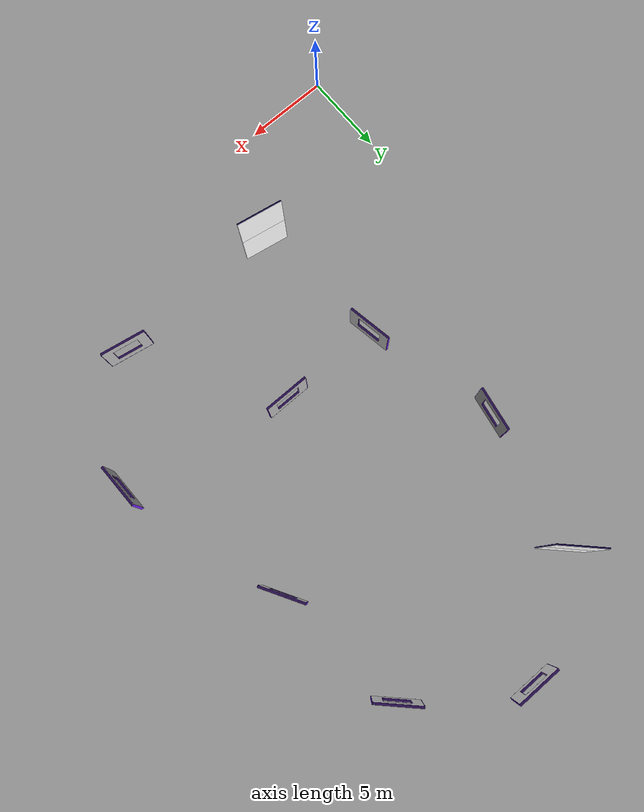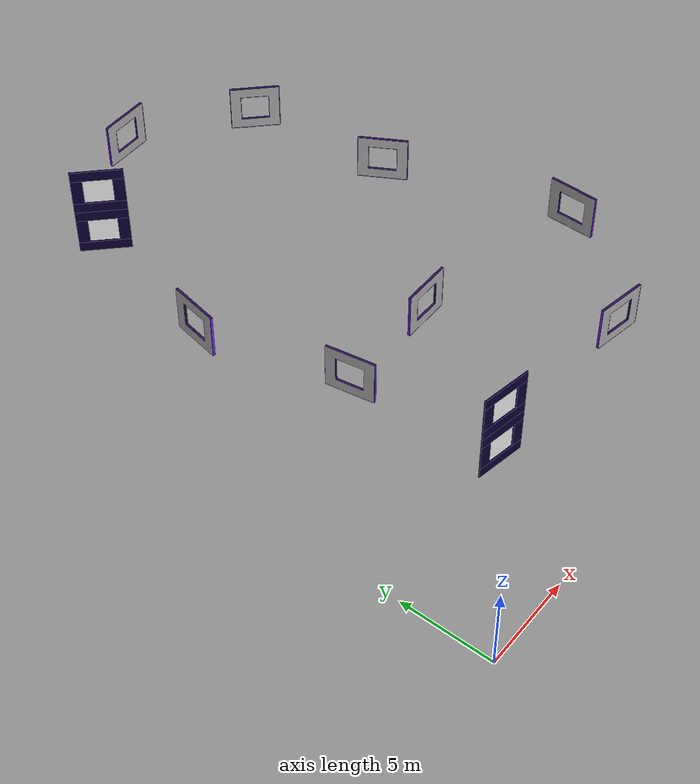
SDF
<sdf version="1.9">
 <world name="x3_a2rl_track">
  <plugin filename="gz-sim-physics-system" name="gz::sim::systems::Physics"/>
  <plugin filename="gz-sim-sensors-system" name="gz::sim::systems::Sensors">
   <render_engine>ogre2</render_engine>
  </plugin>
  <plugin filename="gz-sim-scene-broadcaster-system" name="gz::sim::systems::SceneBroadcaster"/>
  <plugin filename="gz-sim-user-commands-system" name="gz::sim::systems::UserCommands"/>
  <physics name="fast" type="ignored">
   <max_step_size>0.004</max_step_size>
   <real_time_factor>1</real_time_factor>
  </physics>
  <scene><ambient>0.3 0.3 0.3</ambient><grid>false</grid></scene>
  <light type="spot" name="spot">
   <pose>0 0 10.0 0 0 0</pose>
   <diffuse>1 1 1 1</diffuse>
   <specular>1 1 1 1</specular>
   <intensity>1</intensity>
   <attenuation>
    <range>30</range>
    <linear>0.03</linear>
    <constant>0.02</constant>
    <quadratic>0.0</quadratic>
   </attenuation>
   <direction>0 0 -1</direction>
   <spot><inner_angle>0</inner_angle><outer_angle>2.5</outer_angle><falloff>0.5</falloff></spot>
   <visualize>false</visualize>
  </light>
  <light type="spot" name="spot2">
   <pose>20 20 10.0 0 0 0</pose>
   <diffuse>1 1 1 1</diffuse>
   <specular>1 1 1 1</specular>
   <intensity>1</intensity>
   <attenuation>
    <range>30</range>
    <linear>0.03</linear>
    <constant>0.02</constant>
    <quadratic>0.0</quadratic>
   </attenuation>
   <direction>0 0 -1</direction>
   <spot><inner_angle>0</inner_angle><outer_angle>2.5</outer_angle><falloff>0.5</falloff></spot>
   <cast_shadows>false</cast_shadows>
   <visualize>false</visualize>
  </light>
  <light type="spot" name="spot3">
   <pose>-20 20 10.0 0 0 0</pose>
   <diffuse>1 1 1 1</diffuse>
   <specular>1 1 1 1</specular>
   <intensity>1</intensity>
   <attenuation>
    <range>30</range>
    <linear>0.03</linear>
    <constant>0.02</constant>
    <quadratic>0.0</quadratic>
   </attenuation>
   <direction>0 0 -1</direction>
   <spot><inner_angle>0</inner_angle><outer_angle>2.5</outer_angle><falloff>0.5</falloff></spot>
   <cast_shadows>false</cast_shadows>
   <visualize>false</visualize>
  </light>
  <light type="spot" name="spot4">
   <pose>20 -20 10.0 0 0 0</pose>
   <diffuse>1 1 1 1</diffuse>
   <specular>1 1 1 1</specular>
   <intensity>1</intensity>
   <attenuation>
    <range>30</range>
    <linear>0.03</linear>
    <constant>0.02</constant>
    <quadratic>0.0</quadratic>
   </attenuation>
   <direction>0 0 -1</direction>
   <spot><inner_angle>0</inner_angle><outer_angle>2.5</outer_angle><falloff>0.5</falloff></spot>
   <cast_shadows>false</cast_shadows>
   <visualize>false</visualize>
  </light>
  <light type="spot" name="spot5">
   <pose>-20 -20 10.0 0 0 0</pose>
   <diffuse>1 1 1 1</diffuse>
   <specular>1 1 1 1</specular>
   <intensity>1</intensity>
   <attenuation>
    <range>30</range>
    <linear>0.03</linear>
    <constant>0.02</constant>
    <quadratic>0.0</quadratic>
   </attenuation>
   <direction>0 0 -1</direction>
   <spot><inner_angle>0</inner_angle><outer_angle>2.5</outer_angle><falloff>0.5</falloff></spot>
   <cast_shadows>false</cast_shadows>
   <visualize>false</visualize>
  </light>
  <include>
   <static>true</static>
   <name>gate1</name>
   <uri>model://single_gate</uri>
   <pose>14 34 0.0 0.0 0.0 1.5708</pose>
  </include>
  <include>
   <static>true</static>
   <name>gate2</name>
   <uri>model://single_gate</uri>
   <pose>20 30 0.0 0.0 0.0 0.7854</pose>
  </include>
  <include>
   <static>true</static>
   <name>gate3</name>
   <uri>model://single_gate</uri>
   <pose>21 22 0.0 0.0 0.0 0.523599</pose>
  </include>
  <include>
   <static>true</static>
   <name>gate4</name>
   <uri>model://single_gate</uri>
   <pose>24 12 0.0 0.0 0.0 0.0</pose>
  </include>
  <include>
   <static>true</static>
   <name>gate5</name>
   <uri>model://single_gate</uri>
   <pose>19 6 0.0 0.0 0.0 1.39626</pose>
  </include>
  <include>
   <static>true</static>
   <name>gate6</name>
   <uri>model://single_gate</uri>
   <pose>14 14 0.0 0.0 0.0 1.5708</pose>
  </include>
  <include>
   <static>true</static>
   <name>gate7</name>
   <uri>model://double_gate</uri>
   <pose>9 6 0.0 0.0 0.0 -0.174533</pose>
  </include>
  <include>
   <static>true</static>
   <name>gate8</name>
   <uri>model://single_gate</uri>
   <pose>8 14 0.0 0.0 0.0 0.174533</pose>
  </include>
  <include>
   <static>true</static>
   <name>gate9</name>
   <uri>model://single_gate</uri>
   <pose>6 22 0.0 0.0 0.0 -0.174533</pose>
  </include>
  <include>
   <static>true</static>
   <name>gate10</name>
   <uri>model://double_gate</uri>
   <pose>8 30 0.0 0.0 0.0 -0.7854</pose>
  </include>
 </world>
</sdf>

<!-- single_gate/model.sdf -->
<sdf version="1.9">
  <model name="single_gate">
    <static>true</static>

    <link name="link">
      <visual name="visual">
        <geometry>
          <mesh>
            <uri>model://single_gate/meshes/single_gate.dae</uri>
          </mesh>
        </geometry>
      </visual>

      <collision name="collision">
        <geometry>
          <mesh>
            <uri>model://single_gate/meshes/single_gate.dae</uri>
          </mesh>
        </geometry>
      </collision>
    </link>
  </model>
</sdf>

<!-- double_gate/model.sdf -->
<sdf version="1.9">
  <model name="gate">
    <static>true</static>
    <!-- Definición del primer panel lateral -->
    <link name="side_panel_left_bottom">
      <pose>1.05 0 1.35 0 0 0</pose>
      <collision name="collision">
        <geometry>
          <box>
            <size>0.6 0.08 1.5</size>
          </box>
        </geometry>
      </collision>
      <visual name="visual">
        <geometry>
          <box>
            <size>0.6 0.08 1.5</size>
          </box>
        </geometry>
        <material>
          <ambient>0.05 0 0.2 1</ambient>
          <diffuse>0.05 0 0.2 1</diffuse>

        </material>
      </visual>
    </link>
    <!-- Definición del segundo panel lateral -->
    <link name="side_panel_right_bottom">
      <pose>-1.05 0 1.35 0 0 0</pose>
      <collision name="collision">
        <geometry>
          <box>
            <size>0.6 0.08 1.5</size>
          </box>
        </geometry>
      </collision>
      <visual name="visual">
        <geometry>
          <box>
            <size>0.6 0.08 1.5</size>
          </box>
        </geometry>
        <material>
          <ambient>0.05 0 0.2 1</ambient>
          <diffuse>0.05 0 0.2 1</diffuse>
        </material>
      </visual>
    </link>
    <!-- Definición de la barra superior -->
    <link name="top_bar_bottom">
      <pose>0 0 2.4 0 0 0</pose>
      <collision name="collision">
        <geometry>
          <box>
            <size>2.7 0.08 0.6</size>
          </box>
        </geometry>
      </collision>
      <visual name="visual">
        <geometry>
          <box>
            <size>2.7 0.08 0.6</size>
          </box>
        </geometry>
        <material>
          <ambient>0.05 0 0.2 1</ambient>
          <diffuse>0.05 0 0.2 1</diffuse>
        </material>
      </visual>
    </link>
    <!-- Definición de la barra inferior -->
    <link name="bottom_bar_bottom">
      <pose>0 0 0.3 0 0 0</pose>
      <collision name="collision">
        <geometry>
          <box>
            <size>2.7 0.08 0.6</size>
          </box>
        </geometry>
      </collision>
      <visual name="visual">
        <geometry>
          <box>
            <size>2.7 0.08 0.6</size>
          </box>
        </geometry>
        <material>
          <ambient>0.05 0 0.2 1</ambient>
          <diffuse>0.05 0 0.2 1</diffuse>
        </material>
      </visual>
    </link>
    <link name="gate_banner_bottom">
      <!-- Ajusta pose para que "tapice" el frente del gate -->
      <pose>0 0.05 1.35 1.5708 0 3.1416 </pose>
      <visual name="banner_visual">
        <cast_shadows>false</cast_shadows>
        <geometry>
          <plane>
            <normal>0 0 1</normal>
            <size>2.7 2.7</size> <!-- Ajustar a tu gusto -->
          </plane>
        </geometry>
        <material>
          <ambient>1 1 1 1</ambient>
          <diffuse>1 1 1 1</diffuse>
          <pbr>
            <metal>
              <albedo_map>textures/Gate_design.png</albedo_map>
              <roughness>0.6</roughness>
              <metalness>0</metalness>
            </metal>
          </pbr>
        </material>
      </visual>
      <!-- Sin collision para que sea "solo visual" -->
    </link>
    <link name="side_panel_left_top">
      <pose>1.05 0 4.05 0 0 0</pose>
      <collision name="collision">
        <geometry>
          <box>
            <size>0.6 0.08 1.5</size>
          </box>
        </geometry>
      </collision>
      <visual name="visual">
        <geometry>
          <box>
            <size>0.6 0.08 1.5</size>
          </box>
        </geometry>
        <material>
          <ambient>0.05 0 0.2 1</ambient>
          <diffuse>0.05 0 0.2 1</diffuse>

        </material>
      </visual>
    </link>
    <!-- Definición del segundo panel lateral -->
    <link name="side_panel_right_top">
      <pose>-1.05 0 4.05 0 0 0</pose>
      <collision name="collision">
        <geometry>
          <box>
            <size>0.6 0.08 1.5</size>
          </box>
        </geometry>
      </collision>
      <visual name="visual">
        <geometry>
          <box>
            <size>0.6 0.08 1.5</size>
          </box>
        </geometry>
        <material>
          <ambient>0.05 0 0.2 1</ambient>
          <diffuse>0.05 0 0.2 1</diffuse>
        </material>
      </visual>
    </link>
    <!-- Definición de la barra superior -->
    <link name="top_bar_top">
      <pose>0 0 5.1 0 0 0</pose>
      <collision name="collision">
        <geometry>
          <box>
            <size>2.7 0.08 0.6</size>
          </box>
        </geometry>
      </collision>
      <visual name="visual">
        <geometry>
          <box>
            <size>2.7 0.08 0.6</size>
          </box>
        </geometry>
        <material>
          <ambient>0.05 0 0.2 1</ambient>
          <diffuse>0.05 0 0.2 1</diffuse>
        </material>
      </visual>
    </link>
    <!-- Definición de la barra inferior -->
    <link name="bottom_bar_top">
      <pose>0 0 3 0 0 0</pose>
      <collision name="collision">
        <geometry>
          <box>
            <size>2.7 0.08 0.6</size>
          </box>
        </geometry>
      </collision>
      <visual name="visual">
        <geometry>
          <box>
            <size>2.7 0.08 0.6</size>
          </box>
        </geometry>
        <material>
          <ambient>0.05 0 0.2 1</ambient>
          <diffuse>0.05 0 0.2 1</diffuse>
        </material>
      </visual>
    </link>
    <link name="gate_banner_top">
      <!-- Ajusta pose para que "tapice" el frente del gate -->
      <pose>0 0.05 4.05 1.5708 0 3.1416 </pose>
      <visual name="banner_visual">
        <cast_shadows>false</cast_shadows>
        <geometry>
          <plane>
            <normal>0 0 1</normal>
            <size>2.7 2.7</size> <!-- Ajustar a tu gusto -->
          </plane>
        </geometry>
        <material>
          <ambient>1 1 1 1</ambient>
          <diffuse>1 1 1 1</diffuse>
          <pbr>
            <metal>
              <albedo_map>textures/Gate_design.png</albedo_map>
              <roughness>0.6</roughness>
              <metalness>0</metalness>
            </metal>
          </pbr>
        </material>
      </visual>
      <!-- Sin collision para que sea "solo visual" -->
    </link>
  </model>
</sdf>
